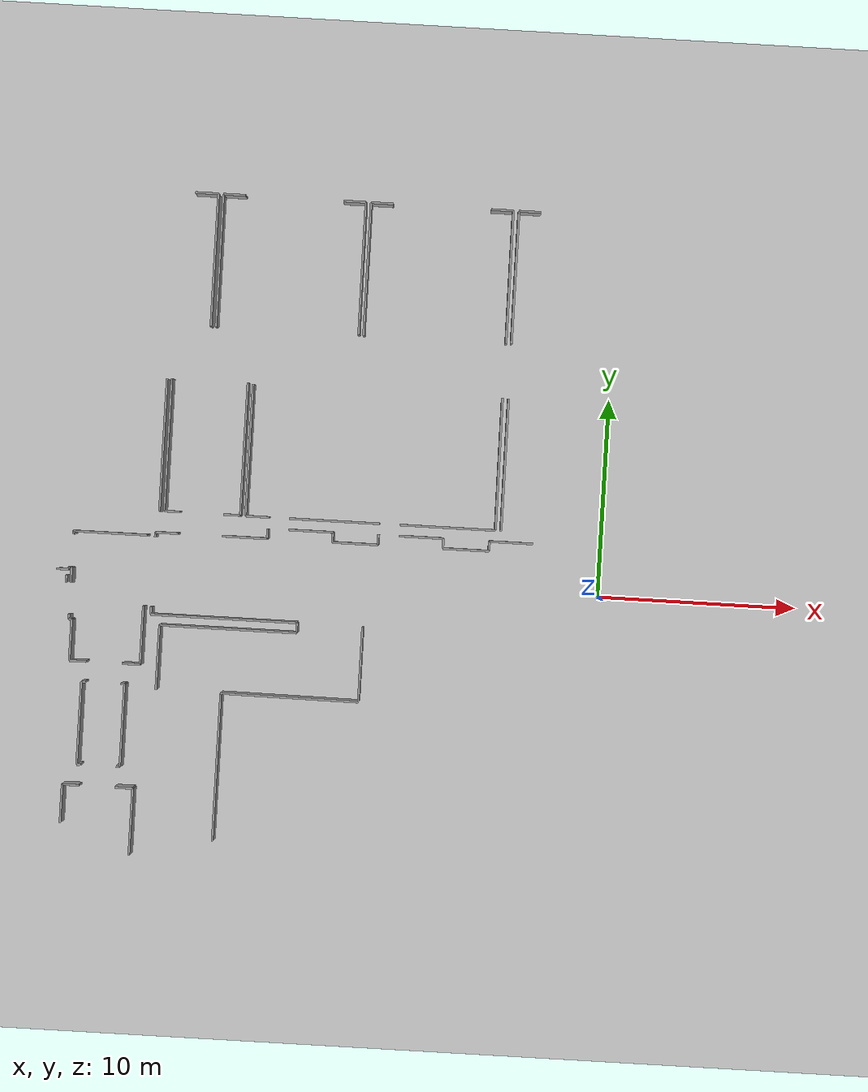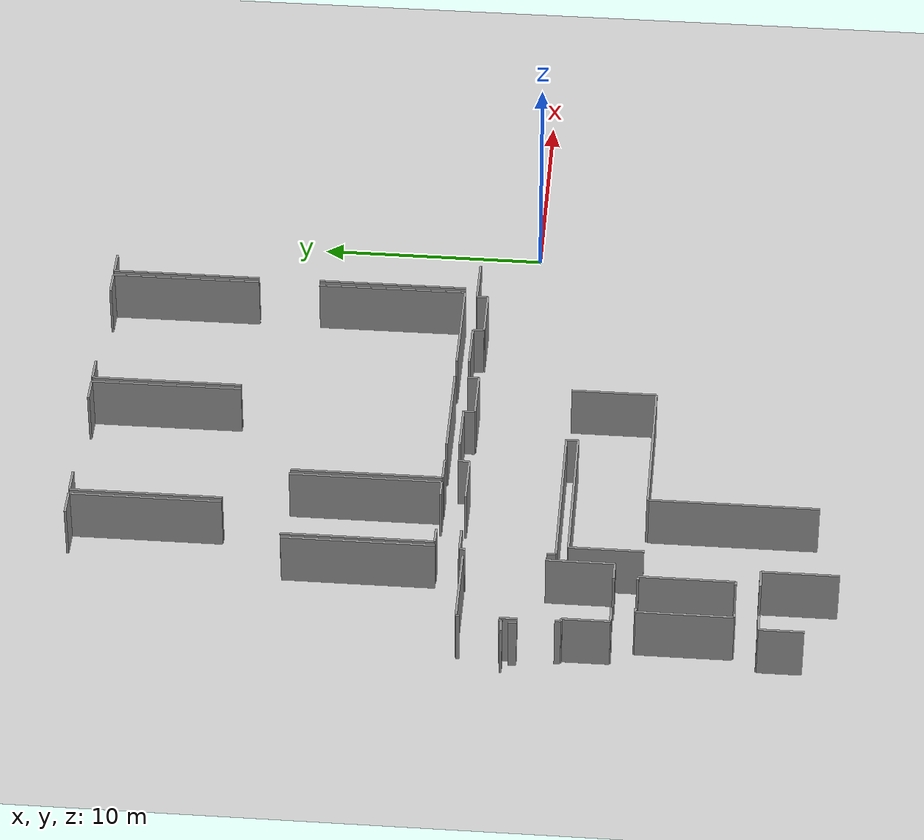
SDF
<sdf version="1.6">
 <world name="default">
  <model name="ground_plane">
   <static>1</static>
   <link name="link">
    <collision name="collision">
     <geometry><plane><normal>0 0 1</normal><size>100 100</size></plane></geometry>
     <surface><friction><ode><mu>100</mu><mu2>50</mu2></ode></friction></surface>
    </collision>
    <visual name="visual">
     <cast_shadows>0</cast_shadows>
     <geometry><plane><normal>0 0 1</normal><size>100 100</size></plane></geometry>
     <material>
      <script><uri>file://media/materials/scripts/gazebo.material</uri><name>Gazebo/Grey</name></script>
     </material>
    </visual>
   </link>
  </model>
  <model name="50045232">
   <static>1</static>
   <link name="Wall_12">
    <collision name="Wall_12_Collision">
     <geometry><box><size>1.15243689475 0.1 2.5</size></box></geometry>
     <pose>0.576218447373 0 1.25 0 0 0</pose>
    </collision>
    <visual name="Wall_12_Visual">
     <pose>0.576218447373 0 1.25 0 0 0</pose>
     <geometry><box><size>1.15243689475 0.1 2.5</size></box></geometry>
     <material>
      <script><uri>file://media/materials/scripts/gazebo.material</uri><name>Gazebo/Grey</name></script>
      <ambient>1 1 1 1</ambient>
     </material>
    </visual>
    <pose>25.3287188443 -0.0288299730116 0 0 0 0.0</pose>
   </link>
   <link name="Wall_13">
    <collision name="Wall_13_Collision">
     <geometry><box><size>6.6709001731 0.1 2.5</size></box></geometry>
     <pose>3.33545008655 0 1.25 0 0 0</pose>
    </collision>
    <visual name="Wall_13_Visual">
     <pose>3.33545008655 0 1.25 0 0 0</pose>
     <geometry><box><size>6.6709001731 0.1 2.5</size></box></geometry>
     <material>
      <script><uri>file://media/materials/scripts/gazebo.material</uri><name>Gazebo/Grey</name></script>
      <ambient>1 1 1 1</ambient>
     </material>
    </visual>
    <pose>26.481155739 -0.0288299730116 0 0 0 -1.57070113403</pose>
   </link>
   <link name="Wall_14">
    <collision name="Wall_14_Collision">
     <geometry><box><size>6.68144149865 0.1 2.5</size></box></geometry>
     <pose>3.34072074933 0 1.25 0 0 0</pose>
    </collision>
    <visual name="Wall_14_Visual">
     <pose>3.34072074933 0 1.25 0 0 0</pose>
     <geometry><box><size>6.68144149865 0.1 2.5</size></box></geometry>
     <material>
      <script><uri>file://media/materials/scripts/gazebo.material</uri><name>Gazebo/Grey</name></script>
      <ambient>1 1 1 1</ambient>
     </material>
    </visual>
    <pose>26.7379584061 -6.71027147166 0 0 0 1.57079632679</pose>
   </link>
   <link name="Wall_15">
    <collision name="Wall_15_Collision">
     <geometry><box><size>1.1164946817 0.1 2.5</size></box></geometry>
     <pose>0.558247340848 0 1.25 0 0 0</pose>
    </collision>
    <visual name="Wall_15_Visual">
     <pose>0.558247340848 0 1.25 0 0 0</pose>
     <geometry><box><size>1.1164946817 0.1 2.5</size></box></geometry>
     <material>
      <script><uri>file://media/materials/scripts/gazebo.material</uri><name>Gazebo/Grey</name></script>
      <ambient>1 1 1 1</ambient>
     </material>
    </visual>
    <pose>26.7379584061 -0.0288299730116 0 0 0 0.0</pose>
   </link>
   <link name="Wall_16">
    <collision name="Wall_16_Collision">
     <geometry><box><size>1.12360692173 0.1 2.5</size></box></geometry>
     <pose>0.561803460867 0 1.25 0 0 0</pose>
    </collision>
    <visual name="Wall_16_Visual">
     <pose>0.561803460867 0 1.25 0 0 0</pose>
     <geometry><box><size>1.12360692173 0.1 2.5</size></box></geometry>
     <material>
      <script><uri>file://media/materials/scripts/gazebo.material</uri><name>Gazebo/Grey</name></script>
      <ambient>1 1 1 1</ambient>
     </material>
    </visual>
    <pose>32.780949357 -0.0288299730116 0 0 0 0.0</pose>
   </link>
   <link name="Wall_17">
    <collision name="Wall_17_Collision">
     <geometry><box><size>6.68145830603 0.1 2.5</size></box></geometry>
     <pose>3.34072915302 0 1.25 0 0 0</pose>
    </collision>
    <visual name="Wall_17_Visual">
     <pose>3.34072915302 0 1.25 0 0 0</pose>
     <geometry><box><size>6.68145830603 0.1 2.5</size></box></geometry>
     <material>
      <script><uri>file://media/materials/scripts/gazebo.material</uri><name>Gazebo/Grey</name></script>
      <ambient>1 1 1 1</ambient>
     </material>
    </visual>
    <pose>33.9045562788 -0.0288299730116 0 0 0 -1.56855332569</pose>
   </link>
   <link name="Wall_18">
    <collision name="Wall_18_Collision">
     <geometry><box><size>6.68093348151 0.1 2.5</size></box></geometry>
     <pose>3.34046674075 0 1.25 0 0 0</pose>
    </collision>
    <visual name="Wall_18_Visual">
     <pose>3.34046674075 0 1.25 0 0 0</pose>
     <geometry><box><size>6.68093348151 0.1 2.5</size></box></geometry>
     <material>
      <script><uri>file://media/materials/scripts/gazebo.material</uri><name>Gazebo/Grey</name></script>
      <ambient>1 1 1 1</ambient>
     </material>
    </visual>
    <pose>34.1685981902 -6.71027147166 0 0 0 1.57079632679</pose>
   </link>
   <link name="Wall_19">
    <collision name="Wall_19_Collision">
     <geometry><box><size>1.11789172885 0.1 2.5</size></box></geometry>
     <pose>0.558945864423 0 1.25 0 0 0</pose>
    </collision>
    <visual name="Wall_19_Visual">
     <pose>0.558945864423 0 1.25 0 0 0</pose>
     <geometry><box><size>1.11789172885 0.1 2.5</size></box></geometry>
     <material>
      <script><uri>file://media/materials/scripts/gazebo.material</uri><name>Gazebo/Grey</name></script>
      <ambient>1 1 1 1</ambient>
     </material>
    </visual>
    <pose>34.1685981902 -0.0293379901572 0 0 0 0.0</pose>
   </link>
   <link name="Wall_20">
    <collision name="Wall_20_Collision">
     <geometry><box><size>1.11763772027 0.1 2.5</size></box></geometry>
     <pose>0.558818860137 0 1.25 0 0 0</pose>
    </collision>
    <visual name="Wall_20_Visual">
     <pose>0.558818860137 0 1.25 0 0 0</pose>
     <geometry><box><size>1.11763772027 0.1 2.5</size></box></geometry>
     <material>
      <script><uri>file://media/materials/scripts/gazebo.material</uri><name>Gazebo/Grey</name></script>
      <ambient>1 1 1 1</ambient>
     </material>
    </visual>
    <pose>40.2114621368 -0.0293379901572 0 0 0 0.0</pose>
   </link>
   <link name="Wall_21">
    <collision name="Wall_21_Collision">
     <geometry><box><size>6.68094862427 0.1 2.5</size></box></geometry>
     <pose>3.34047431213 0 1.25 0 0 0</pose>
    </collision>
    <visual name="Wall_21_Visual">
     <pose>3.34047431213 0 1.25 0 0 0</pose>
     <geometry><box><size>6.68094862427 0.1 2.5</size></box></geometry>
     <material>
      <script><uri>file://media/materials/scripts/gazebo.material</uri><name>Gazebo/Grey</name></script>
      <ambient>1 1 1 1</ambient>
     </material>
    </visual>
    <pose>41.3290998571 -0.0293379901572 0 0 0 -1.56866721436</pose>
   </link>
   <link name="Wall_22">
    <collision name="Wall_22_Collision">
     <geometry><box><size>6.67039212573 0.1 2.5</size></box></geometry>
     <pose>3.33519606287 0 1.25 0 0 0</pose>
    </collision>
    <visual name="Wall_22_Visual">
     <pose>3.33519606287 0 1.25 0 0 0</pose>
     <geometry><box><size>6.67039212573 0.1 2.5</size></box></geometry>
     <material>
      <script><uri>file://media/materials/scripts/gazebo.material</uri><name>Gazebo/Grey</name></script>
      <ambient>1 1 1 1</ambient>
     </material>
    </visual>
    <pose>41.6160025401 -6.69973011589 0 0 0 1.57079632679</pose>
   </link>
   <link name="Wall_23">
    <collision name="Wall_23_Collision">
     <geometry><box><size>1.11395459597 0.1 2.5</size></box></geometry>
     <pose>0.556977297984 0 1.25 0 0 0</pose>
    </collision>
    <visual name="Wall_23_Visual">
     <pose>0.556977297984 0 1.25 0 0 0</pose>
     <geometry><box><size>1.11395459597 0.1 2.5</size></box></geometry>
     <material>
      <script><uri>file://media/materials/scripts/gazebo.material</uri><name>Gazebo/Grey</name></script>
      <ambient>1 1 1 1</ambient>
     </material>
    </visual>
    <pose>41.6160025401 -0.0293379901572 0 0 0 0.0</pose>
   </link>
   <link name="Wall_46">
    <collision name="Wall_46_Collision">
     <geometry><box><size>6.68410858866 0.1 2.5</size></box></geometry>
     <pose>3.34205429433 0 1.25 0 0 0</pose>
    </collision>
    <visual name="Wall_46_Visual">
     <pose>3.34205429433 0 1.25 0 0 0</pose>
     <geometry><box><size>6.68410858866 0.1 2.5</size></box></geometry>
     <material>
      <script><uri>file://media/materials/scripts/gazebo.material</uri><name>Gazebo/Grey</name></script>
      <ambient>1 1 1 1</ambient>
     </material>
    </visual>
    <pose>28.5062390856 -9.42143197333 0 0 0 -1.57079632679</pose>
   </link>
   <link name="Wall_47">
    <collision name="Wall_47_Collision">
     <geometry><box><size>0.817907604382 0.1 2.5</size></box></geometry>
     <pose>0.408953802191 0 1.25 0 0 0</pose>
    </collision>
    <visual name="Wall_47_Visual">
     <pose>0.408953802191 0 1.25 0 0 0</pose>
     <geometry><box><size>0.817907604382 0.1 2.5</size></box></geometry>
     <material>
      <script><uri>file://media/materials/scripts/gazebo.material</uri><name>Gazebo/Grey</name></script>
      <ambient>1 1 1 1</ambient>
     </material>
    </visual>
    <pose>28.5062390856 -16.105540562 0 0 0 3.14159265359</pose>
   </link>
   <link name="Wall_48">
    <collision name="Wall_48_Collision">
     <geometry><box><size>0.777901254167 0.1 2.5</size></box></geometry>
     <pose>0.388950627084 0 1.25 0 0 0</pose>
    </collision>
    <visual name="Wall_48_Visual">
     <pose>0.388950627084 0 1.25 0 0 0</pose>
     <geometry><box><size>0.777901254167 0.1 2.5</size></box></geometry>
     <material>
      <script><uri>file://media/materials/scripts/gazebo.material</uri><name>Gazebo/Grey</name></script>
      <ambient>1 1 1 1</ambient>
     </material>
    </visual>
    <pose>25.4535640578 -16.105540562 0 0 0 3.14159265359</pose>
   </link>
   <link name="Wall_49">
    <collision name="Wall_49_Collision">
     <geometry><box><size>6.67509128433 0.1 2.5</size></box></geometry>
     <pose>3.33754564217 0 1.25 0 0 0</pose>
    </collision>
    <visual name="Wall_49_Visual">
     <pose>3.33754564217 0 1.25 0 0 0</pose>
     <geometry><box><size>6.67509128433 0.1 2.5</size></box></geometry>
     <material>
      <script><uri>file://media/materials/scripts/gazebo.material</uri><name>Gazebo/Grey</name></script>
      <ambient>1 1 1 1</ambient>
     </material>
    </visual>
    <pose>24.6756628036 -16.105540562 0 0 0 1.57079632679</pose>
   </link>
   <link name="Wall_97">
    <collision name="Wall_97_Collision">
     <geometry><box><size>6.67953643435 0.1 2.5</size></box></geometry>
     <pose>3.33976821718 0 1.25 0 0 0</pose>
    </collision>
    <visual name="Wall_97_Visual">
     <pose>3.33976821718 0 1.25 0 0 0</pose>
     <geometry><box><size>6.67953643435 0.1 2.5</size></box></geometry>
     <material>
      <script><uri>file://media/materials/scripts/gazebo.material</uri><name>Gazebo/Grey</name></script>
      <ambient>1 1 1 1</ambient>
     </material>
    </visual>
    <pose>41.6356882045 -16.1465629465 0 0 0 1.57079632679</pose>
   </link>
   <link name="Wall_102">
    <collision name="Wall_102_Collision">
     <geometry><box><size>4.79987299571 0.1 2.5</size></box></geometry>
     <pose>2.39993649786 0 1.25 0 0 0</pose>
    </collision>
    <visual name="Wall_102_Visual">
     <pose>2.39993649786 0 1.25 0 0 0</pose>
     <geometry><box><size>4.79987299571 0.1 2.5</size></box></geometry>
     <material>
      <script><uri>file://media/materials/scripts/gazebo.material</uri><name>Gazebo/Grey</name></script>
      <ambient>1 1 1 1</ambient>
     </material>
    </visual>
    <pose>41.3503095729 -16.1215431021 0 0 0 3.14159265359</pose>
   </link>
   <link name="Wall_103">
    <collision name="Wall_103_Collision">
     <geometry><box><size>4.54649944436 0.1 2.5</size></box></geometry>
     <pose>2.27324972218 0 1.25 0 0 0</pose>
    </collision>
    <visual name="Wall_103_Visual">
     <pose>2.27324972218 0 1.25 0 0 0</pose>
     <geometry><box><size>4.54649944436 0.1 2.5</size></box></geometry>
     <material>
      <script><uri>file://media/materials/scripts/gazebo.material</uri><name>Gazebo/Grey</name></script>
      <ambient>1 1 1 1</ambient>
     </material>
    </visual>
    <pose>35.5265280203 -16.1215431021 0 0 0 3.14159265359</pose>
   </link>
   <link name="Wall_104">
    <collision name="Wall_104_Collision">
     <geometry><box><size>1.16907445626 0.1 2.5</size></box></geometry>
     <pose>0.584537228131 0 1.25 0 0 0</pose>
    </collision>
    <visual name="Wall_104_Visual">
     <pose>0.584537228131 0 1.25 0 0 0</pose>
     <geometry><box><size>1.16907445626 0.1 2.5</size></box></geometry>
     <material>
      <script><uri>file://media/materials/scripts/gazebo.material</uri><name>Gazebo/Grey</name></script>
      <ambient>1 1 1 1</ambient>
     </material>
    </visual>
    <pose>29.944562629 -16.1215431021 0 0 0 3.14159265359</pose>
   </link>
   <link name="Wall_105">
    <collision name="Wall_105_Collision">
     <geometry><box><size>6.64689633275 0.1 2.5</size></box></geometry>
     <pose>3.32344816638 0 1.25 0 0 0</pose>
    </collision>
    <visual name="Wall_105_Visual">
     <pose>3.32344816638 0 1.25 0 0 0</pose>
     <geometry><box><size>6.64689633275 0.1 2.5</size></box></geometry>
     <material>
      <script><uri>file://media/materials/scripts/gazebo.material</uri><name>Gazebo/Grey</name></script>
      <ambient>1 1 1 1</ambient>
     </material>
    </visual>
    <pose>28.7754881727 -16.1215431021 0 0 0 1.57079632679</pose>
   </link>
   <link name="Wall_106">
    <collision name="Wall_106_Collision">
     <geometry><box><size>6.64693564533 0.1 2.5</size></box></geometry>
     <pose>3.32346782267 0 1.25 0 0 0</pose>
    </collision>
    <visual name="Wall_106_Visual">
     <pose>3.32346782267 0 1.25 0 0 0</pose>
     <geometry><box><size>6.64693564533 0.1 2.5</size></box></geometry>
     <material>
      <script><uri>file://media/materials/scripts/gazebo.material</uri><name>Gazebo/Grey</name></script>
      <ambient>1 1 1 1</ambient>
     </material>
    </visual>
    <pose>41.3274488014 -9.47464676933 0 0 0 -1.56735702516</pose>
   </link>
   <link name="Wall_107">
    <collision name="Wall_107_Collision">
     <geometry><box><size>6.6697571043 0.1 2.5</size></box></geometry>
     <pose>3.33487855215 0 1.25 0 0 0</pose>
    </collision>
    <visual name="Wall_107_Visual">
     <pose>3.33487855215 0 1.25 0 0 0</pose>
     <geometry><box><size>6.6697571043 0.1 2.5</size></box></geometry>
     <material>
      <script><uri>file://media/materials/scripts/gazebo.material</uri><name>Gazebo/Grey</name></script>
      <ambient>1 1 1 1</ambient>
     </material>
    </visual>
    <pose>24.4414668995 -16.1381806636 0 0 0 1.57079632679</pose>
   </link>
   <link name="Wall_136">
    <collision name="Wall_136_Collision">
     <geometry><box><size>1.92906810605 0.1 2.5</size></box></geometry>
     <pose>0.964534053024 0 1.25 0 0 0</pose>
    </collision>
    <visual name="Wall_136_Visual">
     <pose>0.964534053024 0 1.25 0 0 0</pose>
     <geometry><box><size>1.92906810605 0.1 2.5</size></box></geometry>
     <material>
      <script><uri>file://media/materials/scripts/gazebo.material</uri><name>Gazebo/Grey</name></script>
      <ambient>1 1 1 1</ambient>
     </material>
    </visual>
    <pose>20.3496428004 -32.0463565645 0 0 0 1.57079632679</pose>
   </link>
   <link name="Wall_137">
    <collision name="Wall_137_Collision">
     <geometry><box><size>0.860073027465 0.1 2.5</size></box></geometry>
     <pose>0.430036513732 0 1.25 0 0 0</pose>
    </collision>
    <visual name="Wall_137_Visual">
     <pose>0.430036513732 0 1.25 0 0 0</pose>
     <geometry><box><size>0.860073027465 0.1 2.5</size></box></geometry>
     <material>
      <script><uri>file://media/materials/scripts/gazebo.material</uri><name>Gazebo/Grey</name></script>
      <ambient>1 1 1 1</ambient>
     </material>
    </visual>
    <pose>20.3496428004 -30.1172884585 0 0 0 0.0</pose>
   </link>
   <link name="Wall_138">
    <collision name="Wall_138_Collision">
     <geometry><box><size>0.893221146214 0.1 2.5</size></box></geometry>
     <pose>0.446610573107 0 1.25 0 0 0</pose>
    </collision>
    <visual name="Wall_138_Visual">
     <pose>0.446610573107 0 1.25 0 0 0</pose>
     <geometry><box><size>0.893221146214 0.1 2.5</size></box></geometry>
     <material>
      <script><uri>file://media/materials/scripts/gazebo.material</uri><name>Gazebo/Grey</name></script>
      <ambient>1 1 1 1</ambient>
     </material>
    </visual>
    <pose>23.0046674075 -30.1172884585 0 0 0 0.0</pose>
   </link>
   <link name="Wall_139">
    <collision name="Wall_139_Collision">
     <geometry><box><size>3.35392919511 0.1 2.5</size></box></geometry>
     <pose>1.67696459756 0 1.25 0 0 0</pose>
    </collision>
    <visual name="Wall_139_Visual">
     <pose>1.67696459756 0 1.25 0 0 0</pose>
     <geometry><box><size>3.35392919511 0.1 2.5</size></box></geometry>
     <material>
      <script><uri>file://media/materials/scripts/gazebo.material</uri><name>Gazebo/Grey</name></script>
      <ambient>1 1 1 1</ambient>
     </material>
    </visual>
    <pose>23.8978885537 -30.1172884585 0 0 0 -1.57079632679</pose>
   </link>
   <link name="Wall_148">
    <collision name="Wall_148_Collision">
     <geometry><box><size>4.17767899667 0.1 2.5</size></box></geometry>
     <pose>2.08883949833 0 1.25 0 0 0</pose>
    </collision>
    <visual name="Wall_148_Visual">
     <pose>2.08883949833 0 1.25 0 0 0</pose>
     <geometry><box><size>4.17767899667 0.1 2.5</size></box></geometry>
     <material>
      <script><uri>file://media/materials/scripts/gazebo.material</uri><name>Gazebo/Grey</name></script>
      <ambient>1 1 1 1</ambient>
     </material>
    </visual>
    <pose>21.0178123512 -29.0856326401 0 0 0 1.57079632679</pose>
   </link>
   <link name="Wall_149">
    <collision name="Wall_149_Collision">
     <geometry><box><size>0.19622162248 0.1 2.5</size></box></geometry>
     <pose>0.0981108112399 0 1.25 0 0 0</pose>
    </collision>
    <visual name="Wall_149_Visual">
     <pose>0.0981108112399 0 1.25 0 0 0</pose>
     <geometry><box><size>0.19622162248 0.1 2.5</size></box></geometry>
     <material>
      <script><uri>file://media/materials/scripts/gazebo.material</uri><name>Gazebo/Grey</name></script>
      <ambient>1 1 1 1</ambient>
     </material>
    </visual>
    <pose>21.0178123512 -24.9079536434 0 0 0 0.0</pose>
   </link>
   <link name="Wall_150">
    <collision name="Wall_150_Collision">
     <geometry><box><size>0.204476901095 0.1 2.5</size></box></geometry>
     <pose>0.102238450548 0 1.25 0 0 0</pose>
    </collision>
    <visual name="Wall_150_Visual">
     <pose>0.102238450548 0 1.25 0 0 0</pose>
     <geometry><box><size>0.204476901095 0.1 2.5</size></box></geometry>
     <material>
      <script><uri>file://media/materials/scripts/gazebo.material</uri><name>Gazebo/Grey</name></script>
      <ambient>1 1 1 1</ambient>
     </material>
    </visual>
    <pose>22.9838387046 -24.9079536434 0 0 0 0.0</pose>
   </link>
   <link name="Wall_151">
    <collision name="Wall_151_Collision">
     <geometry><box><size>4.15558025083 0.1 2.5</size></box></geometry>
     <pose>2.07779012542 0 1.25 0 0 0</pose>
    </collision>
    <visual name="Wall_151_Visual">
     <pose>2.07779012542 0 1.25 0 0 0</pose>
     <geometry><box><size>4.15558025083 0.1 2.5</size></box></geometry>
     <material>
      <script><uri>file://media/materials/scripts/gazebo.material</uri><name>Gazebo/Grey</name></script>
      <ambient>1 1 1 1</ambient>
     </material>
    </visual>
    <pose>23.1883156057 -24.9079536434 0 0 0 -1.57079632679</pose>
   </link>
   <link name="Wall_152">
    <collision name="Wall_152_Collision">
     <geometry><box><size>0.18212414669 0.1 2.5</size></box></geometry>
     <pose>0.091062073345 0 1.25 0 0 0</pose>
    </collision>
    <visual name="Wall_152_Visual">
     <pose>0.091062073345 0 1.25 0 0 0</pose>
     <geometry><box><size>0.18212414669 0.1 2.5</size></box></geometry>
     <material>
      <script><uri>file://media/materials/scripts/gazebo.material</uri><name>Gazebo/Grey</name></script>
      <ambient>1 1 1 1</ambient>
     </material>
    </visual>
    <pose>23.1883156057 -29.0635338943 0 0 0 3.14159265359</pose>
   </link>
   <link name="Wall_153">
    <collision name="Wall_153_Collision">
     <geometry><box><size>0.218046054382 0.1 2.5</size></box></geometry>
     <pose>0.109023027191 0 1.25 0 0 0</pose>
    </collision>
    <visual name="Wall_153_Visual">
     <pose>0.109023027191 0 1.25 0 0 0</pose>
     <geometry><box><size>0.218046054382 0.1 2.5</size></box></geometry>
     <material>
      <script><uri>file://media/materials/scripts/gazebo.material</uri><name>Gazebo/Grey</name></script>
      <ambient>1 1 1 1</ambient>
     </material>
    </visual>
    <pose>21.2347356723 -29.0635338943 0 0 0 -3.04006936082</pose>
   </link>
   <link name="Wall_154">
    <collision name="Wall_154_Collision">
     <geometry><box><size>2.07931417685 0.1 2.5</size></box></geometry>
     <pose>1.03965708843 0 1.25 0 0 0</pose>
    </collision>
    <visual name="Wall_154_Visual">
     <pose>1.03965708843 0 1.25 0 0 0</pose>
     <geometry><box><size>2.07931417685 0.1 2.5</size></box></geometry>
     <material>
      <script><uri>file://media/materials/scripts/gazebo.material</uri><name>Gazebo/Grey</name></script>
      <ambient>1 1 1 1</ambient>
     </material>
    </visual>
    <pose>20.3496428004 -23.8877282108 0 0 0 1.57079632679</pose>
   </link>
   <link name="Wall_155">
    <collision name="Wall_155_Collision">
     <geometry><box><size>0.150373075091 0.1 2.5</size></box></geometry>
     <pose>0.0751865375456 0 1.25 0 0 0</pose>
    </collision>
    <visual name="Wall_155_Visual">
     <pose>0.0751865375456 0 1.25 0 0 0</pose>
     <geometry><box><size>0.150373075091 0.1 2.5</size></box></geometry>
     <material>
      <script><uri>file://media/materials/scripts/gazebo.material</uri><name>Gazebo/Grey</name></script>
      <ambient>1 1 1 1</ambient>
     </material>
    </visual>
    <pose>20.3496428004 -21.808414034 0 0 0 3.14159265359</pose>
   </link>
   <link name="Wall_156">
    <collision name="Wall_156_Collision">
     <geometry><box><size>0.267344022861 0.1 2.5</size></box></geometry>
     <pose>0.13367201143 0 1.25 0 0 0</pose>
    </collision>
    <visual name="Wall_156_Visual">
     <pose>0.13367201143 0 1.25 0 0 0</pose>
     <geometry><box><size>0.267344022861 0.1 2.5</size></box></geometry>
     <material>
      <script><uri>file://media/materials/scripts/gazebo.material</uri><name>Gazebo/Grey</name></script>
      <ambient>1 1 1 1</ambient>
     </material>
    </visual>
    <pose>20.1992697254 -21.808414034 0 0 0 1.57079632679</pose>
   </link>
   <link name="Wall_157">
    <collision name="Wall_157_Collision">
     <geometry><box><size>0.776631211303 0.1 2.5</size></box></geometry>
     <pose>0.388315605652 0 1.25 0 0 0</pose>
    </collision>
    <visual name="Wall_157_Visual">
     <pose>0.388315605652 0 1.25 0 0 0</pose>
     <geometry><box><size>0.776631211303 0.1 2.5</size></box></geometry>
     <material>
      <script><uri>file://media/materials/scripts/gazebo.material</uri><name>Gazebo/Grey</name></script>
      <ambient>1 1 1 1</ambient>
     </material>
    </visual>
    <pose>20.1992697254 -19.9627877441 0 0 0 1.57079632679</pose>
   </link>
   <link name="Wall_158">
    <collision name="Wall_158_Collision">
     <geometry><box><size>0.159263375139 0.1 2.5</size></box></geometry>
     <pose>0.0796316875695 0 1.25 0 0 0</pose>
    </collision>
    <visual name="Wall_158_Visual">
     <pose>0.0796316875695 0 1.25 0 0 0</pose>
     <geometry><box><size>0.159263375139 0.1 2.5</size></box></geometry>
     <material>
      <script><uri>file://media/materials/scripts/gazebo.material</uri><name>Gazebo/Grey</name></script>
      <ambient>1 1 1 1</ambient>
     </material>
    </visual>
    <pose>20.1992697254 -17.5274805525 0 0 0 1.57079632679</pose>
   </link>
   <link name="Wall_159">
    <collision name="Wall_159_Collision">
     <geometry><box><size>3.70738212415 0.1 2.5</size></box></geometry>
     <pose>1.85369106207 0 1.25 0 0 0</pose>
    </collision>
    <visual name="Wall_159_Visual">
     <pose>1.85369106207 0 1.25 0 0 0</pose>
     <geometry><box><size>3.70738212415 0.1 2.5</size></box></geometry>
     <material>
      <script><uri>file://media/materials/scripts/gazebo.material</uri><name>Gazebo/Grey</name></script>
      <ambient>1 1 1 1</ambient>
     </material>
    </visual>
    <pose>20.1992697254 -17.3682171773 0 0 0 0.0</pose>
   </link>
   <link name="Wall_160">
    <collision name="Wall_160_Collision">
     <geometry><box><size>2.95615177012 0.1 2.5</size></box></geometry>
     <pose>1.47807588506 0 1.25 0 0 0</pose>
    </collision>
    <visual name="Wall_160_Visual">
     <pose>1.47807588506 0 1.25 0 0 0</pose>
     <geometry><box><size>2.95615177012 0.1 2.5</size></box></geometry>
     <material>
      <script><uri>file://media/materials/scripts/gazebo.material</uri><name>Gazebo/Grey</name></script>
      <ambient>1 1 1 1</ambient>
     </material>
    </visual>
    <pose>23.9066518495 -20.9231941578 0 0 0 -1.57079632679</pose>
   </link>
   <link name="Wall_161">
    <collision name="Wall_161_Collision">
     <geometry><box><size>0.901476424829 0.1 2.5</size></box></geometry>
     <pose>0.450738212415 0 1.25 0 0 0</pose>
    </collision>
    <visual name="Wall_161_Visual">
     <pose>0.450738212415 0 1.25 0 0 0</pose>
     <geometry><box><size>0.901476424829 0.1 2.5</size></box></geometry>
     <material>
      <script><uri>file://media/materials/scripts/gazebo.material</uri><name>Gazebo/Grey</name></script>
      <ambient>1 1 1 1</ambient>
     </material>
    </visual>
    <pose>23.9066518495 -23.8793459279 0 0 0 3.14159265359</pose>
   </link>
   <link name="Wall_162">
    <collision name="Wall_162_Collision">
     <geometry><box><size>0.868876757212 0.1 2.5</size></box></geometry>
     <pose>0.434438378606 0 1.25 0 0 0</pose>
    </collision>
    <visual name="Wall_162_Visual">
     <pose>0.434438378606 0 1.25 0 0 0</pose>
     <geometry><box><size>0.868876757212 0.1 2.5</size></box></geometry>
     <material>
      <script><uri>file://media/materials/scripts/gazebo.material</uri><name>Gazebo/Grey</name></script>
      <ambient>1 1 1 1</ambient>
     </material>
    </visual>
    <pose>21.2184791237 -23.8793459279 0 0 0 -3.13194524058</pose>
   </link>
   <link name="Wall_167">
    <collision name="Wall_167_Collision">
     <geometry><box><size>0.116843943483 0.1 2.5</size></box></geometry>
     <pose>0.0584219717415 0 1.25 0 0 0</pose>
    </collision>
    <visual name="Wall_167_Visual">
     <pose>0.0584219717415 0 1.25 0 0 0</pose>
     <geometry><box><size>0.116843943483 0.1 2.5</size></box></geometry>
     <material>
      <script><uri>file://media/materials/scripts/gazebo.material</uri><name>Gazebo/Grey</name></script>
      <ambient>1 1 1 1</ambient>
     </material>
    </visual>
    <pose>20.0595650103 -19.1779012542 0 0 0 -1.57079632679</pose>
   </link>
   <link name="Wall_168">
    <collision name="Wall_168_Collision">
     <geometry><box><size>0.63222382961 0.1 2.5</size></box></geometry>
     <pose>0.316111914805 0 1.25 0 0 0</pose>
    </collision>
    <visual name="Wall_168_Visual">
     <pose>0.316111914805 0 1.25 0 0 0</pose>
     <geometry><box><size>0.63222382961 0.1 2.5</size></box></geometry>
     <material>
      <script><uri>file://media/materials/scripts/gazebo.material</uri><name>Gazebo/Grey</name></script>
      <ambient>1 1 1 1</ambient>
     </material>
    </visual>
    <pose>20.0595650103 -19.2947451977 0 0 0 -3.10703355418</pose>
   </link>
   <link name="Wall_174">
    <collision name="Wall_174_Collision">
     <geometry><box><size>0.363105254802 0.1 2.5</size></box></geometry>
     <pose>0.181552627401 0 1.25 0 0 0</pose>
    </collision>
    <visual name="Wall_174_Visual">
     <pose>0.181552627401 0 1.25 0 0 0</pose>
     <geometry><box><size>0.363105254802 0.1 2.5</size></box></geometry>
     <material>
      <script><uri>file://media/materials/scripts/gazebo.material</uri><name>Gazebo/Grey</name></script>
      <ambient>1 1 1 1</ambient>
     </material>
    </visual>
    <pose>19.9650738212 -19.592443245 0 0 0 -1.57079632679</pose>
   </link>
   <link name="Wall_323">
    <collision name="Wall_323_Collision">
     <geometry><box><size>7.39495157962 0.1 2.5</size></box></geometry>
     <pose>3.69747578981 0 1.25 0 0 0</pose>
    </collision>
    <visual name="Wall_323_Visual">
     <pose>3.69747578981 0 1.25 0 0 0</pose>
     <geometry><box><size>7.39495157962 0.1 2.5</size></box></geometry>
     <material>
      <script><uri>file://media/materials/scripts/gazebo.material</uri><name>Gazebo/Grey</name></script>
      <ambient>1 1 1 1</ambient>
     </material>
    </visual>
    <pose>28.0424194317 -25.1402444833 0 0 0 -1.57079632679</pose>
   </link>
   <link name="Wall_341">
    <collision name="Wall_341_Collision">
     <geometry><box><size>3.24661057311 0.1 2.5</size></box></geometry>
     <pose>1.62330528655 0 1.25 0 0 0</pose>
    </collision>
    <visual name="Wall_341_Visual">
     <pose>1.62330528655 0 1.25 0 0 0</pose>
     <geometry><box><size>3.24661057311 0.1 2.5</size></box></geometry>
     <material>
      <script><uri>file://media/materials/scripts/gazebo.material</uri><name>Gazebo/Grey</name></script>
      <ambient>1 1 1 1</ambient>
     </material>
    </visual>
    <pose>24.7726940784 -25.0902047944 0 0 0 1.57079632679</pose>
   </link>
   <link name="Wall_342">
    <collision name="Wall_342_Collision">
     <geometry><box><size>6.89798380695 0.1 2.5</size></box></geometry>
     <pose>3.44899190348 0 1.25 0 0 0</pose>
    </collision>
    <visual name="Wall_342_Visual">
     <pose>3.44899190348 0 1.25 0 0 0</pose>
     <geometry><box><size>6.89798380695 0.1 2.5</size></box></geometry>
     <material>
      <script><uri>file://media/materials/scripts/gazebo.material</uri><name>Gazebo/Grey</name></script>
      <ambient>1 1 1 1</ambient>
     </material>
    </visual>
    <pose>24.7726940784 -21.8435942213 0 0 0 0.0</pose>
   </link>
   <link name="Wall_343">
    <collision name="Wall_343_Collision">
     <geometry><box><size>0.508271154151 0.1 2.5</size></box></geometry>
     <pose>0.254135577076 0 1.25 0 0 0</pose>
    </collision>
    <visual name="Wall_343_Visual">
     <pose>0.254135577076 0 1.25 0 0 0</pose>
     <geometry><box><size>0.508271154151 0.1 2.5</size></box></geometry>
     <material>
      <script><uri>file://media/materials/scripts/gazebo.material</uri><name>Gazebo/Grey</name></script>
      <ambient>1 1 1 1</ambient>
     </material>
    </visual>
    <pose>31.6706778854 -21.8435942213 0 0 0 1.57079632679</pose>
   </link>
   <link name="Wall_344">
    <collision name="Wall_344_Collision">
     <geometry><box><size>7.37043975234 0.1 2.5</size></box></geometry>
     <pose>3.68521987617 0 1.25 0 0 0</pose>
    </collision>
    <visual name="Wall_344_Visual">
     <pose>3.68521987617 0 1.25 0 0 0</pose>
     <geometry><box><size>7.37043975234 0.1 2.5</size></box></geometry>
     <material>
      <script><uri>file://media/materials/scripts/gazebo.material</uri><name>Gazebo/Grey</name></script>
      <ambient>1 1 1 1</ambient>
     </material>
    </visual>
    <pose>31.6706778854 -21.3353230672 0 0 0 3.14159265359</pose>
   </link>
   <link name="Wall_345">
    <collision name="Wall_345_Collision">
     <geometry><box><size>0.399428480711 0.1 2.5</size></box></geometry>
     <pose>0.199714240356 0 1.25 0 0 0</pose>
    </collision>
    <visual name="Wall_345_Visual">
     <pose>0.199714240356 0 1.25 0 0 0</pose>
     <geometry><box><size>0.399428480711 0.1 2.5</size></box></geometry>
     <material>
      <script><uri>file://media/materials/scripts/gazebo.material</uri><name>Gazebo/Grey</name></script>
      <ambient>1 1 1 1</ambient>
     </material>
    </visual>
    <pose>24.300238133 -21.3353230672 0 0 0 1.57079632679</pose>
   </link>
   <link name="Wall_346">
    <collision name="Wall_346_Collision">
     <geometry><box><size>0.240165105572 0.1 2.5</size></box></geometry>
     <pose>0.120082552786 0 1.25 0 0 0</pose>
    </collision>
    <visual name="Wall_346_Visual">
     <pose>0.120082552786 0 1.25 0 0 0</pose>
     <geometry><box><size>0.240165105572 0.1 2.5</size></box></geometry>
     <material>
      <script><uri>file://media/materials/scripts/gazebo.material</uri><name>Gazebo/Grey</name></script>
      <ambient>1 1 1 1</ambient>
     </material>
    </visual>
    <pose>24.300238133 -17.4397205906 0 0 0 1.57079632679</pose>
   </link>
   <link name="Wall_347">
    <collision name="Wall_347_Collision">
     <geometry><box><size>1.15332592475 0.1 2.5</size></box></geometry>
     <pose>0.576662962375 0 1.25 0 0 0</pose>
    </collision>
    <visual name="Wall_347_Visual">
     <pose>0.576662962375 0 1.25 0 0 0</pose>
     <geometry><box><size>1.15332592475 0.1 2.5</size></box></geometry>
     <material>
      <script><uri>file://media/materials/scripts/gazebo.material</uri><name>Gazebo/Grey</name></script>
      <ambient>1 1 1 1</ambient>
     </material>
    </visual>
    <pose>24.300238133 -17.199555485 0 0 0 0.0</pose>
   </link>
   <link name="Wall_348">
    <collision name="Wall_348_Collision">
     <geometry><box><size>2.27604381648 0.1 2.5</size></box></geometry>
     <pose>1.13802190824 0 1.25 0 0 0</pose>
    </collision>
    <visual name="Wall_348_Visual">
     <pose>1.13802190824 0 1.25 0 0 0</pose>
     <geometry><box><size>2.27604381648 0.1 2.5</size></box></geometry>
     <material>
      <script><uri>file://media/materials/scripts/gazebo.material</uri><name>Gazebo/Grey</name></script>
      <ambient>1 1 1 1</ambient>
     </material>
    </visual>
    <pose>27.6431179552 -17.199555485 0 0 0 0.0</pose>
   </link>
   <link name="Wall_349">
    <collision name="Wall_349_Collision">
     <geometry><box><size>0.508906175583 0.1 2.5</size></box></geometry>
     <pose>0.254453087792 0 1.25 0 0 0</pose>
    </collision>
    <visual name="Wall_349_Visual">
     <pose>0.254453087792 0 1.25 0 0 0</pose>
     <geometry><box><size>0.508906175583 0.1 2.5</size></box></geometry>
     <material>
      <script><uri>file://media/materials/scripts/gazebo.material</uri><name>Gazebo/Grey</name></script>
      <ambient>1 1 1 1</ambient>
     </material>
    </visual>
    <pose>29.9191617717 -17.199555485 0 0 0 1.57079632679</pose>
   </link>
   <link name="Wall_350">
    <collision name="Wall_350_Collision">
     <geometry><box><size>2.21838387046 0.1 2.5</size></box></geometry>
     <pose>1.10919193523 0 1.25 0 0 0</pose>
    </collision>
    <visual name="Wall_350_Visual">
     <pose>1.10919193523 0 1.25 0 0 0</pose>
     <geometry><box><size>2.21838387046 0.1 2.5</size></box></geometry>
     <material>
      <script><uri>file://media/materials/scripts/gazebo.material</uri><name>Gazebo/Grey</name></script>
      <ambient>1 1 1 1</ambient>
     </material>
    </visual>
    <pose>30.9851087474 -16.6906493094 0 0 0 0.0</pose>
   </link>
   <link name="Wall_351">
    <collision name="Wall_351_Collision">
     <geometry><box><size>0.499380854104 0.1 2.5</size></box></geometry>
     <pose>0.249690427052 0 1.25 0 0 0</pose>
    </collision>
    <visual name="Wall_351_Visual">
     <pose>0.249690427052 0 1.25 0 0 0</pose>
     <geometry><box><size>0.499380854104 0.1 2.5</size></box></geometry>
     <material>
      <script><uri>file://media/materials/scripts/gazebo.material</uri><name>Gazebo/Grey</name></script>
      <ambient>1 1 1 1</ambient>
     </material>
    </visual>
    <pose>33.2034926179 -16.6906493094 0 0 0 -1.57079632679</pose>
   </link>
   <link name="Wall_352">
    <collision name="Wall_352_Collision">
     <geometry><box><size>2.28556913796 0.1 2.5</size></box></geometry>
     <pose>1.14278456898 0 1.25 0 0 0</pose>
    </collision>
    <visual name="Wall_352_Visual">
     <pose>1.14278456898 0 1.25 0 0 0</pose>
     <geometry><box><size>2.28556913796 0.1 2.5</size></box></geometry>
     <material>
      <script><uri>file://media/materials/scripts/gazebo.material</uri><name>Gazebo/Grey</name></script>
      <ambient>1 1 1 1</ambient>
     </material>
    </visual>
    <pose>33.2034926179 -17.1900301635 0 0 0 0.0</pose>
   </link>
   <link name="Wall_353">
    <collision name="Wall_353_Collision">
     <geometry><box><size>0.50903317987 0.1 2.5</size></box></geometry>
     <pose>0.254516589935 0 1.25 0 0 0</pose>
    </collision>
    <visual name="Wall_353_Visual">
     <pose>0.254516589935 0 1.25 0 0 0</pose>
     <geometry><box><size>0.50903317987 0.1 2.5</size></box></geometry>
     <material>
      <script><uri>file://media/materials/scripts/gazebo.material</uri><name>Gazebo/Grey</name></script>
      <ambient>1 1 1 1</ambient>
     </material>
    </visual>
    <pose>35.4890617558 -17.1900301635 0 0 0 1.57079632679</pose>
   </link>
   <link name="Wall_354">
    <collision name="Wall_354_Collision">
     <geometry><box><size>2.22371805048 0.1 2.5</size></box></geometry>
     <pose>1.11185902524 0 1.25 0 0 0</pose>
    </collision>
    <visual name="Wall_354_Visual">
     <pose>1.11185902524 0 1.25 0 0 0</pose>
     <geometry><box><size>2.22371805048 0.1 2.5</size></box></geometry>
     <material>
      <script><uri>file://media/materials/scripts/gazebo.material</uri><name>Gazebo/Grey</name></script>
      <ambient>1 1 1 1</ambient>
     </material>
    </visual>
    <pose>36.5463724401 -16.6809969836 0 0 0 0.0</pose>
   </link>
   <link name="Wall_355">
    <collision name="Wall_355_Collision">
     <geometry><box><size>0.500523892681 0.1 2.5</size></box></geometry>
     <pose>0.250261946341 0 1.25 0 0 0</pose>
    </collision>
    <visual name="Wall_355_Visual">
     <pose>0.250261946341 0 1.25 0 0 0</pose>
     <geometry><box><size>0.500523892681 0.1 2.5</size></box></geometry>
     <material>
      <script><uri>file://media/materials/scripts/gazebo.material</uri><name>Gazebo/Grey</name></script>
      <ambient>1 1 1 1</ambient>
     </material>
    </visual>
    <pose>38.7700904906 -16.6809969836 0 0 0 -1.57079632679</pose>
   </link>
   <link name="Wall_356">
    <collision name="Wall_356_Collision">
     <geometry><box><size>2.31884426099 0.1 2.5</size></box></geometry>
     <pose>1.1594221305 0 1.25 0 0 0</pose>
    </collision>
    <visual name="Wall_356_Visual">
     <pose>1.1594221305 0 1.25 0 0 0</pose>
     <geometry><box><size>2.31884426099 0.1 2.5</size></box></geometry>
     <material>
      <script><uri>file://media/materials/scripts/gazebo.material</uri><name>Gazebo/Grey</name></script>
      <ambient>1 1 1 1</ambient>
     </material>
    </visual>
    <pose>38.7700904906 -17.1815208763 0 0 0 0.0</pose>
   </link>
   <link name="Wall_357">
    <collision name="Wall_357_Collision">
     <geometry><box><size>0.488458485474 0.1 2.5</size></box></geometry>
     <pose>0.244229242737 0 1.25 0 0 0</pose>
    </collision>
    <visual name="Wall_357_Visual">
     <pose>0.244229242737 0 1.25 0 0 0</pose>
     <geometry><box><size>0.488458485474 0.1 2.5</size></box></geometry>
     <material>
      <script><uri>file://media/materials/scripts/gazebo.material</uri><name>Gazebo/Grey</name></script>
      <ambient>1 1 1 1</ambient>
     </material>
    </visual>
    <pose>41.0889347515 -17.1815208763 0 0 0 1.57079632679</pose>
   </link>
   <link name="Wall_358">
    <collision name="Wall_358_Collision">
     <geometry><box><size>2.20098428322 0.1 2.5</size></box></geometry>
     <pose>1.10049214161 0 1.25 0 0 0</pose>
    </collision>
    <visual name="Wall_358_Visual">
     <pose>1.10049214161 0 1.25 0 0 0</pose>
     <geometry><box><size>2.20098428322 0.1 2.5</size></box></geometry>
     <material>
      <script><uri>file://media/materials/scripts/gazebo.material</uri><name>Gazebo/Grey</name></script>
      <ambient>1 1 1 1</ambient>
     </material>
    </visual>
    <pose>41.0889347515 -16.6930623909 0 0 0 0.0</pose>
   </link>
   <link name="Wall_389">
    <collision name="Wall_389_Collision">
     <geometry><box><size>3.75932687728 0.1 2.5</size></box></geometry>
     <pose>1.87966343864 0 1.25 0 0 0</pose>
    </collision>
    <visual name="Wall_389_Visual">
     <pose>1.87966343864 0 1.25 0 0 0</pose>
     <geometry><box><size>3.75932687728 0.1 2.5</size></box></geometry>
     <material>
      <script><uri>file://media/materials/scripts/gazebo.material</uri><name>Gazebo/Grey</name></script>
      <ambient>1 1 1 1</ambient>
     </material>
    </visual>
    <pose>34.9661851087 -21.3715192888 0 0 0 -1.57079632679</pose>
   </link>
   <link name="Wall_390">
    <collision name="Wall_390_Collision">
     <geometry><box><size>6.92566298455 0.1 2.5</size></box></geometry>
     <pose>3.46283149228 0 1.25 0 0 0</pose>
    </collision>
    <visual name="Wall_390_Visual">
     <pose>3.46283149228 0 1.25 0 0 0</pose>
     <geometry><box><size>6.92566298455 0.1 2.5</size></box></geometry>
     <material>
      <script><uri>file://media/materials/scripts/gazebo.material</uri><name>Gazebo/Grey</name></script>
      <ambient>1 1 1 1</ambient>
     </material>
    </visual>
    <pose>34.9661851087 -25.1308461661 0 0 0 3.13572439159</pose>
   </link>
   <pose>-46.75 19.2201063661 0 0 0 0</pose>
  </model>
 </world>
</sdf>
